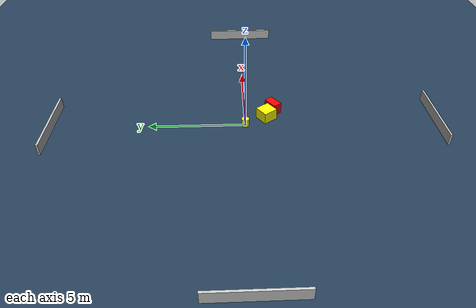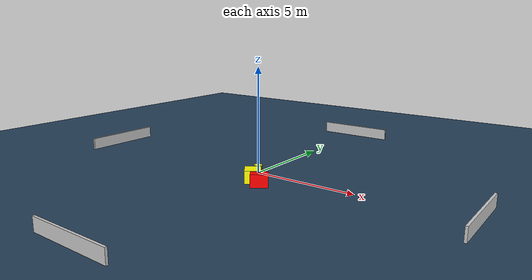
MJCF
<?xml version="1.0" ?>
<mujoco model="generated_environment">
  <option timestep="0.01" integrator="RK4" cone="elliptic"/>
  <default>
    <geom density="1"/>
  </default>
  <asset>
    <texture builtin="gradient" height="3072" name="skybox" rgb1="0.3 0.5 0.7" rgb2="0 0 0" type="skybox" width="512"/>
    <texture builtin="checker" height="300" name="groundplane" rgb1="0.2 0.3 0.4" rgb2="0.1 0.2 0.3" type="2d" width="300"/>
    <material name="groundplane" reflectance="0.2" texrepeat="5 5" texture="groundplane"/>
  </asset>
  <worldbody>
    <light dir="0 0 -1" directional="true" pos="0 0 1.5"/>
    <geom condim="3" friction="0.5 0.005 0.001" material="groundplane" name="floor" pos="0 0 0" size="0 0 0.05" type="plane"/>
    <body name="walls">
      <geom name="wall_1" condim="4" pos="-10.0 0.0 0.3" rgba="0.800000011920929 0.800000011920929 0.800000011920929 1.0" size="0.05 2.0 0.3" type="box"/>
      <geom name="wall_2" condim="4" pos="10.0 0.0 0.3" rgba="0.800000011920929 0.800000011920929 0.800000011920929 1.0" size="0.05 2.0 0.3" type="box"/>
      <geom name="wall_3" condim="4" pos="0.0 -10.0 0.3" rgba="0.800000011920929 0.800000011920929 0.800000011920929 1.0" size="2.0 0.05 0.3" type="box"/>
      <geom name="wall_4" condim="4" pos="0.0 10.0 0.3" rgba="0.800000011920929 0.800000011920929 0.800000011920929 1.0" size="2.0 0.05 0.3" type="box"/>
    </body>
    <body name="robot">
      <joint name="joint_x" type="slide" pos="0 0 0" axis="1 0 0"/>
      <joint name="joint_y" type="slide" pos="0 0 0" axis="0 1 0"/>
      <geom name="robot" type="cylinder" pos="0.0 0.0 0.2" size="0.2 0.2 0.0" mass="5.0" friction="1.0 0.005 0.0001" condim="4" rgba="1.0 1.0 0.0 1.0"/>
    </body>
    <body name="obstacle_1_movable">
      <geom name="obstacle_1_movable" condim="4" pos="0.5689344276284807 -1.1388920543288192 0.3" euler="0 0 35.38392466890503" friction="0.0 0.005 0.001" rgba="1.0 1.0 0.0 1.0" size="0.3734000945630541 0.39261590112711653 0.3" type="box" mass="0.1"/>
      <joint type="free"/>
    </body>
    <body name="obstacle_2_static">
      <geom name="obstacle_2_static" condim="4" pos="1.2272421806727998 -1.5355710511773424 0.3" euler="0 0 36.1680965695341" friction="0.0 0.005 0.001" rgba="1.0 0.0 0.0 1.0" size="0.3983458960667491 0.23114878049232654 0.3" type="box"/>
    </body>
  </worldbody>
  <actuator>
    <motor name="actuator_x" joint="joint_x" gear="1" ctrlrange="-1 1"/>
    <motor name="actuator_y" joint="joint_y" gear="1" ctrlrange="-1 1"/>
  </actuator>
</mujoco>
